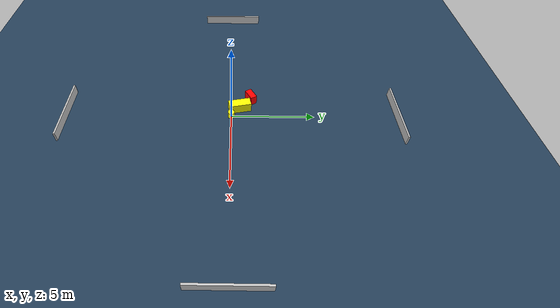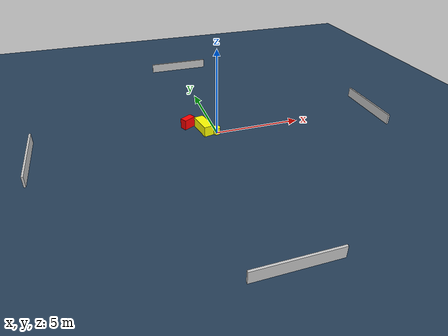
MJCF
<?xml version="1.0" ?>
<mujoco model="generated_environment">
  <option timestep="0.01" integrator="RK4" cone="elliptic"/>
  <default>
    <geom density="1"/>
  </default>
  <asset>
    <texture builtin="gradient" height="3072" name="skybox" rgb1="0.3 0.5 0.7" rgb2="0 0 0" type="skybox" width="512"/>
    <texture builtin="checker" height="300" name="groundplane" rgb1="0.2 0.3 0.4" rgb2="0.1 0.2 0.3" type="2d" width="300"/>
    <material name="groundplane" reflectance="0.2" texrepeat="5 5" texture="groundplane"/>
  </asset>
  <worldbody>
    <light dir="0 0 -1" directional="true" pos="0 0 1.5"/>
    <geom condim="3" friction="0.5 0.005 0.001" material="groundplane" name="floor" pos="0 0 0" size="0 0 0.05" type="plane"/>
    <body name="walls">
      <geom name="wall_1" condim="4" pos="-10.0 0.0 0.3" rgba="0.800000011920929 0.800000011920929 0.800000011920929 1.0" size="0.05 2.0 0.3" type="box"/>
      <geom name="wall_2" condim="4" pos="10.0 0.0 0.3" rgba="0.800000011920929 0.800000011920929 0.800000011920929 1.0" size="0.05 2.0 0.3" type="box"/>
      <geom name="wall_3" condim="4" pos="0.0 -10.0 0.3" rgba="0.800000011920929 0.800000011920929 0.800000011920929 1.0" size="2.0 0.05 0.3" type="box"/>
      <geom name="wall_4" condim="4" pos="0.0 10.0 0.3" rgba="0.800000011920929 0.800000011920929 0.800000011920929 1.0" size="2.0 0.05 0.3" type="box"/>
    </body>
    <body name="robot">
      <joint name="joint_x" type="slide" pos="0 0 0" axis="1 0 0"/>
      <joint name="joint_y" type="slide" pos="0 0 0" axis="0 1 0"/>
      <geom name="robot" type="cylinder" pos="0.0 0.0 0.2" size="0.2 0.2 0.0" mass="5.0" friction="1.0 0.005 0.0001" condim="4" rgba="1.0 1.0 0.0 1.0"/>
    </body>
    <body name="obstacle_1_movable">
      <geom name="obstacle_1_movable" condim="4" pos="-0.6192848955840126 0.509894156686868 0.3" euler="0 0 281.2434518402421" friction="0.0 0.005 0.001" rgba="1.0 1.0 0.0 1.0" size="0.6686654197101195 0.2762329341889078 0.3" type="box" mass="0.1"/>
      <joint type="free"/>
    </body>
    <body name="obstacle_2_static">
      <geom name="obstacle_2_static" condim="4" pos="-1.389737320873763 1.2051457716883869 0.3" euler="0 0 209.30902769773266" friction="0.0 0.005 0.001" rgba="1.0 0.0 0.0 1.0" size="0.36851471700458704 0.2012154590509341 0.3" type="box"/>
    </body>
  </worldbody>
  <actuator>
    <motor name="actuator_x" joint="joint_x" gear="1" ctrlrange="-1 1"/>
    <motor name="actuator_y" joint="joint_y" gear="1" ctrlrange="-1 1"/>
  </actuator>
</mujoco>
